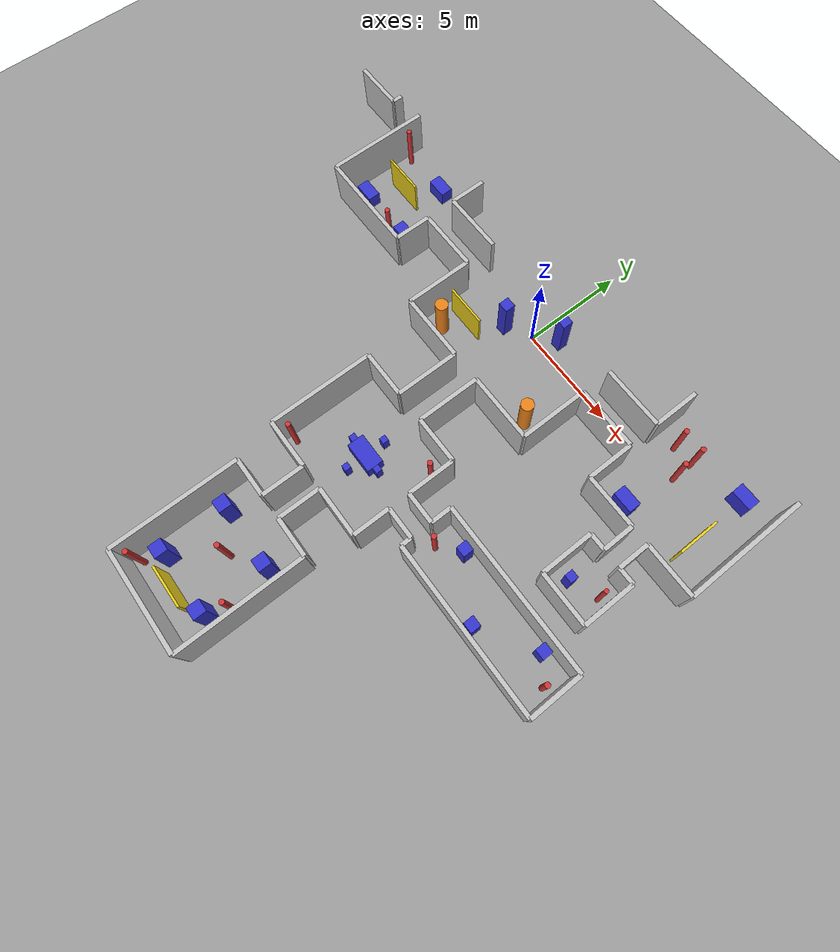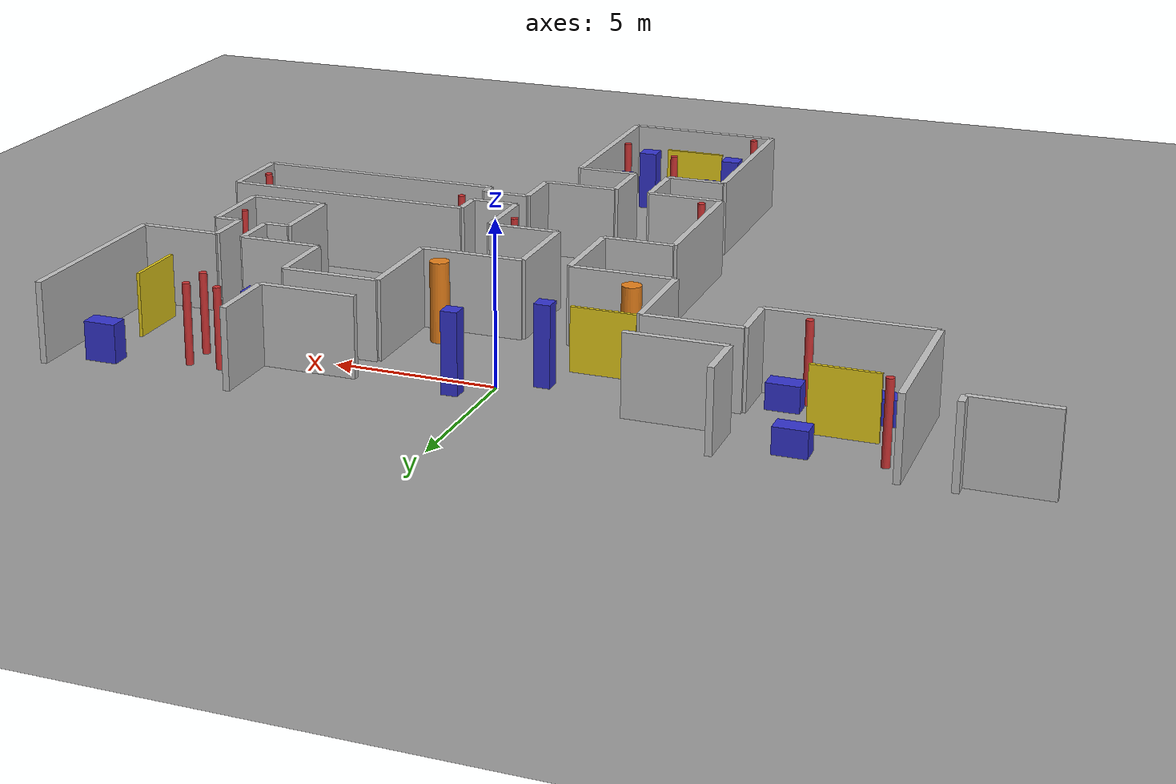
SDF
<sdf version="1.7">
 <world name="commercial_building">
  <model name="ground_plane">
   <static>true</static>
   <link name="link">
    <collision name="collision">
     <geometry><plane><normal>0 0 1</normal><size>50 50</size></plane></geometry>
     <surface><friction><ode><mu>1</mu><mu2>1</mu2></ode></friction></surface>
    </collision>
    <visual name="visual">
     <geometry><plane><normal>0 0 1</normal><size>50 50</size></plane></geometry>
     <material><ambient>0.6 0.6 0.6 1</ambient><diffuse>0.6 0.6 0.6 1</diffuse></material>
    </visual>
   </link>
  </model>
  <model name="wall_hub_s_left">
   <static>true</static>
   <pose>-2.375 -4 1.25 0 0 0</pose>
   <link name="link">
    <collision name="c"><geometry><box><size>3.25 0.2 2.5</size></box></geometry></collision>
    <visual name="v">
     <geometry><box><size>3.25 0.2 2.5</size></box></geometry>
     <material><ambient>0.75 0.75 0.75 1</ambient><diffuse>0.75 0.75 0.75 1</diffuse></material>
    </visual>
   </link>
  </model>
  <model name="wall_hub_s_right">
   <static>true</static>
   <pose>2.375 -4 1.25 0 0 0</pose>
   <link name="link">
    <collision name="c"><geometry><box><size>3.25 0.2 2.5</size></box></geometry></collision>
    <visual name="v">
     <geometry><box><size>3.25 0.2 2.5</size></box></geometry>
     <material><ambient>0.75 0.75 0.75 1</ambient><diffuse>0.75 0.75 0.75 1</diffuse></material>
    </visual>
   </link>
  </model>
  <model name="wall_hub_e_bot">
   <static>true</static>
   <pose>4 -2.375 1.25 0 0 0</pose>
   <link name="link">
    <collision name="c"><geometry><box><size>0.2 3.25 2.5</size></box></geometry></collision>
    <visual name="v">
     <geometry><box><size>0.2 3.25 2.5</size></box></geometry>
     <material><ambient>0.75 0.75 0.75 1</ambient><diffuse>0.75 0.75 0.75 1</diffuse></material>
    </visual>
   </link>
  </model>
  <model name="wall_hub_w_bot">
   <static>true</static>
   <pose>-4 -2.375 1.25 0 0 0</pose>
   <link name="link">
    <collision name="c"><geometry><box><size>0.2 3.25 2.5</size></box></geometry></collision>
    <visual name="v">
     <geometry><box><size>0.2 3.25 2.5</size></box></geometry>
     <material><ambient>0.75 0.75 0.75 1</ambient><diffuse>0.75 0.75 0.75 1</diffuse></material>
    </visual>
   </link>
  </model>
  <model name="wall_shall_west">
   <static>true</static>
   <pose>-0.75 -5.5 1.25 0 0 0</pose>
   <link name="link">
    <collision name="c"><geometry><box><size>0.2 3.0 2.5</size></box></geometry></collision>
    <visual name="v">
     <geometry><box><size>0.2 3.0 2.5</size></box></geometry>
     <material><ambient>0.75 0.75 0.75 1</ambient><diffuse>0.75 0.75 0.75 1</diffuse></material>
    </visual>
   </link>
  </model>
  <model name="wall_shall_east">
   <static>true</static>
   <pose>0.75 -5.5 1.25 0 0 0</pose>
   <link name="link">
    <collision name="c"><geometry><box><size>0.2 3.0 2.5</size></box></geometry></collision>
    <visual name="v">
     <geometry><box><size>0.2 3.0 2.5</size></box></geometry>
     <material><ambient>0.75 0.75 0.75 1</ambient><diffuse>0.75 0.75 0.75 1</diffuse></material>
    </visual>
   </link>
  </model>
  <model name="wall_D_n_left">
   <static>true</static>
   <pose>-1.875 -7 1.25 0 0 0</pose>
   <link name="link">
    <collision name="c"><geometry><box><size>2.25 0.2 2.5</size></box></geometry></collision>
    <visual name="v">
     <geometry><box><size>2.25 0.2 2.5</size></box></geometry>
     <material><ambient>0.75 0.75 0.75 1</ambient><diffuse>0.75 0.75 0.75 1</diffuse></material>
    </visual>
   </link>
  </model>
  <model name="wall_D_n_right">
   <static>true</static>
   <pose>1.875 -7 1.25 0 0 0</pose>
   <link name="link">
    <collision name="c"><geometry><box><size>2.25 0.2 2.5</size></box></geometry></collision>
    <visual name="v">
     <geometry><box><size>2.25 0.2 2.5</size></box></geometry>
     <material><ambient>0.75 0.75 0.75 1</ambient><diffuse>0.75 0.75 0.75 1</diffuse></material>
    </visual>
   </link>
  </model>
  <model name="wall_D_s_left">
   <static>true</static>
   <pose>-1.8 -12 1.25 0 0 0</pose>
   <link name="link">
    <collision name="c"><geometry><box><size>2.4 0.2 2.5</size></box></geometry></collision>
    <visual name="v">
     <geometry><box><size>2.4 0.2 2.5</size></box></geometry>
     <material><ambient>0.75 0.75 0.75 1</ambient><diffuse>0.75 0.75 0.75 1</diffuse></material>
    </visual>
   </link>
  </model>
  <model name="wall_D_s_right">
   <static>true</static>
   <pose>1.8 -12 1.25 0 0 0</pose>
   <link name="link">
    <collision name="c"><geometry><box><size>2.4 0.2 2.5</size></box></geometry></collision>
    <visual name="v">
     <geometry><box><size>2.4 0.2 2.5</size></box></geometry>
     <material><ambient>0.75 0.75 0.75 1</ambient><diffuse>0.75 0.75 0.75 1</diffuse></material>
    </visual>
   </link>
  </model>
  <model name="wall_D_e_top">
   <static>true</static>
   <pose>3 -8.125 1.25 0 0 0</pose>
   <link name="link">
    <collision name="c"><geometry><box><size>0.2 2.25 2.5</size></box></geometry></collision>
    <visual name="v">
     <geometry><box><size>0.2 2.25 2.5</size></box></geometry>
     <material><ambient>0.75 0.75 0.75 1</ambient><diffuse>0.75 0.75 0.75 1</diffuse></material>
    </visual>
   </link>
  </model>
  <model name="wall_D_e_bot">
   <static>true</static>
   <pose>3 -11.125 1.25 0 0 0</pose>
   <link name="link">
    <collision name="c"><geometry><box><size>0.2 1.75 2.5</size></box></geometry></collision>
    <visual name="v">
     <geometry><box><size>0.2 1.75 2.5</size></box></geometry>
     <material><ambient>0.75 0.75 0.75 1</ambient><diffuse>0.75 0.75 0.75 1</diffuse></material>
    </visual>
   </link>
  </model>
  <model name="wall_D_w">
   <static>true</static>
   <pose>-3 -9.5 1.25 0 0 0</pose>
   <link name="link">
    <collision name="c"><geometry><box><size>0.2 5.0 2.5</size></box></geometry></collision>
    <visual name="v">
     <geometry><box><size>0.2 5.0 2.5</size></box></geometry>
     <material><ambient>0.75 0.75 0.75 1</ambient><diffuse>0.75 0.75 0.75 1</diffuse></material>
    </visual>
   </link>
  </model>
  <model name="wall_Ehall_n">
   <static>true</static>
   <pose>3.75 -9.25 1.25 0 0 0</pose>
   <link name="link">
    <collision name="c"><geometry><box><size>1.5 0.2 2.5</size></box></geometry></collision>
    <visual name="v">
     <geometry><box><size>1.5 0.2 2.5</size></box></geometry>
     <material><ambient>0.75 0.75 0.75 1</ambient><diffuse>0.75 0.75 0.75 1</diffuse></material>
    </visual>
   </link>
  </model>
  <model name="wall_Ehall_s">
   <static>true</static>
   <pose>3.75 -10.25 1.25 0 0 0</pose>
   <link name="link">
    <collision name="c"><geometry><box><size>1.5 0.2 2.5</size></box></geometry></collision>
    <visual name="v">
     <geometry><box><size>1.5 0.2 2.5</size></box></geometry>
     <material><ambient>0.75 0.75 0.75 1</ambient><diffuse>0.75 0.75 0.75 1</diffuse></material>
    </visual>
   </link>
  </model>
  <model name="wall_E_w_top">
   <static>true</static>
   <pose>4.5 -8.75 1.25 0 0 0</pose>
   <link name="link">
    <collision name="c"><geometry><box><size>0.2 1.0 2.5</size></box></geometry></collision>
    <visual name="v">
     <geometry><box><size>0.2 1.0 2.5</size></box></geometry>
     <material><ambient>0.75 0.75 0.75 1</ambient><diffuse>0.75 0.75 0.75 1</diffuse></material>
    </visual>
   </link>
  </model>
  <model name="wall_E_w_bot">
   <static>true</static>
   <pose>4.5 -10.5 1.25 0 0 0</pose>
   <link name="link">
    <collision name="c"><geometry><box><size>0.2 0.5 2.5</size></box></geometry></collision>
    <visual name="v">
     <geometry><box><size>0.2 0.5 2.5</size></box></geometry>
     <material><ambient>0.75 0.75 0.75 1</ambient><diffuse>0.75 0.75 0.75 1</diffuse></material>
    </visual>
   </link>
  </model>
  <model name="wall_E_e">
   <static>true</static>
   <pose>12.5 -9.5 1.25 0 0 0</pose>
   <link name="link">
    <collision name="c"><geometry><box><size>0.2 2.5 2.5</size></box></geometry></collision>
    <visual name="v">
     <geometry><box><size>0.2 2.5 2.5</size></box></geometry>
     <material><ambient>0.75 0.75 0.75 1</ambient><diffuse>0.75 0.75 0.75 1</diffuse></material>
    </visual>
   </link>
  </model>
  <model name="wall_E_n">
   <static>true</static>
   <pose>8.5 -8.25 1.25 0 0 0</pose>
   <link name="link">
    <collision name="c"><geometry><box><size>8.0 0.2 2.5</size></box></geometry></collision>
    <visual name="v">
     <geometry><box><size>8.0 0.2 2.5</size></box></geometry>
     <material><ambient>0.75 0.75 0.75 1</ambient><diffuse>0.75 0.75 0.75 1</diffuse></material>
    </visual>
   </link>
  </model>
  <model name="wall_E_s">
   <static>true</static>
   <pose>8.5 -10.75 1.25 0 0 0</pose>
   <link name="link">
    <collision name="c"><geometry><box><size>8.0 0.2 2.5</size></box></geometry></collision>
    <visual name="v">
     <geometry><box><size>8.0 0.2 2.5</size></box></geometry>
     <material><ambient>0.75 0.75 0.75 1</ambient><diffuse>0.75 0.75 0.75 1</diffuse></material>
    </visual>
   </link>
  </model>
  <model name="wall_Fhall_w">
   <static>true</static>
   <pose>-0.6 -13 1.25 0 0 0</pose>
   <link name="link">
    <collision name="c"><geometry><box><size>0.2 2.0 2.5</size></box></geometry></collision>
    <visual name="v">
     <geometry><box><size>0.2 2.0 2.5</size></box></geometry>
     <material><ambient>0.75 0.75 0.75 1</ambient><diffuse>0.75 0.75 0.75 1</diffuse></material>
    </visual>
   </link>
  </model>
  <model name="wall_Fhall_e">
   <static>true</static>
   <pose>0.6 -13 1.25 0 0 0</pose>
   <link name="link">
    <collision name="c"><geometry><box><size>0.2 2.0 2.5</size></box></geometry></collision>
    <visual name="v">
     <geometry><box><size>0.2 2.0 2.5</size></box></geometry>
     <material><ambient>0.75 0.75 0.75 1</ambient><diffuse>0.75 0.75 0.75 1</diffuse></material>
    </visual>
   </link>
  </model>
  <model name="wall_F_n_left">
   <static>true</static>
   <pose>-1.55 -14 1.25 0 0 0</pose>
   <link name="link">
    <collision name="c"><geometry><box><size>1.9 0.2 2.5</size></box></geometry></collision>
    <visual name="v">
     <geometry><box><size>1.9 0.2 2.5</size></box></geometry>
     <material><ambient>0.75 0.75 0.75 1</ambient><diffuse>0.75 0.75 0.75 1</diffuse></material>
    </visual>
   </link>
  </model>
  <model name="wall_F_n_right">
   <static>true</static>
   <pose>1.55 -14 1.25 0 0 0</pose>
   <link name="link">
    <collision name="c"><geometry><box><size>1.9 0.2 2.5</size></box></geometry></collision>
    <visual name="v">
     <geometry><box><size>1.9 0.2 2.5</size></box></geometry>
     <material><ambient>0.75 0.75 0.75 1</ambient><diffuse>0.75 0.75 0.75 1</diffuse></material>
    </visual>
   </link>
  </model>
  <model name="wall_F_s">
   <static>true</static>
   <pose>0 -20 1.25 0 0 0</pose>
   <link name="link">
    <collision name="c"><geometry><box><size>5.0 0.2 2.5</size></box></geometry></collision>
    <visual name="v">
     <geometry><box><size>5.0 0.2 2.5</size></box></geometry>
     <material><ambient>0.75 0.75 0.75 1</ambient><diffuse>0.75 0.75 0.75 1</diffuse></material>
    </visual>
   </link>
  </model>
  <model name="wall_F_e">
   <static>true</static>
   <pose>2.5 -17 1.25 0 0 0</pose>
   <link name="link">
    <collision name="c"><geometry><box><size>0.2 6.0 2.5</size></box></geometry></collision>
    <visual name="v">
     <geometry><box><size>0.2 6.0 2.5</size></box></geometry>
     <material><ambient>0.75 0.75 0.75 1</ambient><diffuse>0.75 0.75 0.75 1</diffuse></material>
    </visual>
   </link>
  </model>
  <model name="wall_F_w">
   <static>true</static>
   <pose>-2.5 -17 1.25 0 0 0</pose>
   <link name="link">
    <collision name="c"><geometry><box><size>0.2 6.0 2.5</size></box></geometry></collision>
    <visual name="v">
     <geometry><box><size>0.2 6.0 2.5</size></box></geometry>
     <material><ambient>0.75 0.75 0.75 1</ambient><diffuse>0.75 0.75 0.75 1</diffuse></material>
    </visual>
   </link>
  </model>
  <model name="wall_ehall_s">
   <static>true</static>
   <pose>5.5 -0.75 1.25 0 0 0</pose>
   <link name="link">
    <collision name="c"><geometry><box><size>3.0 0.2 2.5</size></box></geometry></collision>
    <visual name="v">
     <geometry><box><size>3.0 0.2 2.5</size></box></geometry>
     <material><ambient>0.75 0.75 0.75 1</ambient><diffuse>0.75 0.75 0.75 1</diffuse></material>
    </visual>
   </link>
  </model>
  <model name="wall_ehall_n">
   <static>true</static>
   <pose>5.5 0.75 1.25 0 0 0</pose>
   <link name="link">
    <collision name="c"><geometry><box><size>3.0 0.2 2.5</size></box></geometry></collision>
    <visual name="v">
     <geometry><box><size>3.0 0.2 2.5</size></box></geometry>
     <material><ambient>0.75 0.75 0.75 1</ambient><diffuse>0.75 0.75 0.75 1</diffuse></material>
    </visual>
   </link>
  </model>
  <model name="wall_G_w_bot">
   <static>true</static>
   <pose>7 -1.875 1.25 0 0 0</pose>
   <link name="link">
    <collision name="c"><geometry><box><size>0.2 2.25 2.5</size></box></geometry></collision>
    <visual name="v">
     <geometry><box><size>0.2 2.25 2.5</size></box></geometry>
     <material><ambient>0.75 0.75 0.75 1</ambient><diffuse>0.75 0.75 0.75 1</diffuse></material>
    </visual>
   </link>
  </model>
  <model name="wall_G_w_top">
   <static>true</static>
   <pose>7 1.875 1.25 0 0 0</pose>
   <link name="link">
    <collision name="c"><geometry><box><size>0.2 2.25 2.5</size></box></geometry></collision>
    <visual name="v">
     <geometry><box><size>0.2 2.25 2.5</size></box></geometry>
     <material><ambient>0.75 0.75 0.75 1</ambient><diffuse>0.75 0.75 0.75 1</diffuse></material>
    </visual>
   </link>
  </model>
  <model name="wall_G_e">
   <static>true</static>
   <pose>13 0 1.25 0 0 0</pose>
   <link name="link">
    <collision name="c"><geometry><box><size>0.2 6.0 2.5</size></box></geometry></collision>
    <visual name="v">
     <geometry><box><size>0.2 6.0 2.5</size></box></geometry>
     <material><ambient>0.75 0.75 0.75 1</ambient><diffuse>0.75 0.75 0.75 1</diffuse></material>
    </visual>
   </link>
  </model>
  <model name="wall_G_s_left">
   <static>true</static>
   <pose>8.275 -3 1.25 0 0 0</pose>
   <link name="link">
    <collision name="c"><geometry><box><size>2.55 0.2 2.5</size></box></geometry></collision>
    <visual name="v">
     <geometry><box><size>2.55 0.2 2.5</size></box></geometry>
     <material><ambient>0.75 0.75 0.75 1</ambient><diffuse>0.75 0.75 0.75 1</diffuse></material>
    </visual>
   </link>
  </model>
  <model name="wall_G_s_right">
   <static>true</static>
   <pose>11.725 -3 1.25 0 0 0</pose>
   <link name="link">
    <collision name="c"><geometry><box><size>2.55 0.2 2.5</size></box></geometry></collision>
    <visual name="v">
     <geometry><box><size>2.55 0.2 2.5</size></box></geometry>
     <material><ambient>0.75 0.75 0.75 1</ambient><diffuse>0.75 0.75 0.75 1</diffuse></material>
    </visual>
   </link>
  </model>
  <model name="wall_Hhall_w">
   <static>true</static>
   <pose>9.55 -3.75 1.25 0 0 0</pose>
   <link name="link">
    <collision name="c"><geometry><box><size>0.2 1.5 2.5</size></box></geometry></collision>
    <visual name="v">
     <geometry><box><size>0.2 1.5 2.5</size></box></geometry>
     <material><ambient>0.75 0.75 0.75 1</ambient><diffuse>0.75 0.75 0.75 1</diffuse></material>
    </visual>
   </link>
  </model>
  <model name="wall_Hhall_e">
   <static>true</static>
   <pose>10.45 -3.75 1.25 0 0 0</pose>
   <link name="link">
    <collision name="c"><geometry><box><size>0.2 1.5 2.5</size></box></geometry></collision>
    <visual name="v">
     <geometry><box><size>0.2 1.5 2.5</size></box></geometry>
     <material><ambient>0.75 0.75 0.75 1</ambient><diffuse>0.75 0.75 0.75 1</diffuse></material>
    </visual>
   </link>
  </model>
  <model name="wall_H_n_left">
   <static>true</static>
   <pose>9.15 -4.5 1.25 0 0 0</pose>
   <link name="link">
    <collision name="c"><geometry><box><size>0.8 0.2 2.5</size></box></geometry></collision>
    <visual name="v">
     <geometry><box><size>0.8 0.2 2.5</size></box></geometry>
     <material><ambient>0.75 0.75 0.75 1</ambient><diffuse>0.75 0.75 0.75 1</diffuse></material>
    </visual>
   </link>
  </model>
  <model name="wall_H_n_right">
   <static>true</static>
   <pose>10.85 -4.5 1.25 0 0 0</pose>
   <link name="link">
    <collision name="c"><geometry><box><size>0.8 0.2 2.5</size></box></geometry></collision>
    <visual name="v">
     <geometry><box><size>0.8 0.2 2.5</size></box></geometry>
     <material><ambient>0.75 0.75 0.75 1</ambient><diffuse>0.75 0.75 0.75 1</diffuse></material>
    </visual>
   </link>
  </model>
  <model name="wall_H_s">
   <static>true</static>
   <pose>10 -7 1.25 0 0 0</pose>
   <link name="link">
    <collision name="c"><geometry><box><size>2.5 0.2 2.5</size></box></geometry></collision>
    <visual name="v">
     <geometry><box><size>2.5 0.2 2.5</size></box></geometry>
     <material><ambient>0.75 0.75 0.75 1</ambient><diffuse>0.75 0.75 0.75 1</diffuse></material>
    </visual>
   </link>
  </model>
  <model name="wall_H_e">
   <static>true</static>
   <pose>11.25 -5.75 1.25 0 0 0</pose>
   <link name="link">
    <collision name="c"><geometry><box><size>0.2 2.5 2.5</size></box></geometry></collision>
    <visual name="v">
     <geometry><box><size>0.2 2.5 2.5</size></box></geometry>
     <material><ambient>0.75 0.75 0.75 1</ambient><diffuse>0.75 0.75 0.75 1</diffuse></material>
    </visual>
   </link>
  </model>
  <model name="wall_H_w">
   <static>true</static>
   <pose>8.75 -5.75 1.25 0 0 0</pose>
   <link name="link">
    <collision name="c"><geometry><box><size>0.2 2.5 2.5</size></box></geometry></collision>
    <visual name="v">
     <geometry><box><size>0.2 2.5 2.5</size></box></geometry>
     <material><ambient>0.75 0.75 0.75 1</ambient><diffuse>0.75 0.75 0.75 1</diffuse></material>
    </visual>
   </link>
  </model>
  <model name="wall_whall_s">
   <static>true</static>
   <pose>-5.5 -0.75 1.25 0 0 0</pose>
   <link name="link">
    <collision name="c"><geometry><box><size>3.0 0.2 2.5</size></box></geometry></collision>
    <visual name="v">
     <geometry><box><size>3.0 0.2 2.5</size></box></geometry>
     <material><ambient>0.75 0.75 0.75 1</ambient><diffuse>0.75 0.75 0.75 1</diffuse></material>
    </visual>
   </link>
  </model>
  <model name="wall_whall_n">
   <static>true</static>
   <pose>-5.5 0.75 1.25 0 0 0</pose>
   <link name="link">
    <collision name="c"><geometry><box><size>3.0 0.2 2.5</size></box></geometry></collision>
    <visual name="v">
     <geometry><box><size>3.0 0.2 2.5</size></box></geometry>
     <material><ambient>0.75 0.75 0.75 1</ambient><diffuse>0.75 0.75 0.75 1</diffuse></material>
    </visual>
   </link>
  </model>
  <model name="wall_J_e_bot">
   <static>true</static>
   <pose>-7 -1.625 1.25 0 0 0</pose>
   <link name="link">
    <collision name="c"><geometry><box><size>0.2 1.75 2.5</size></box></geometry></collision>
    <visual name="v">
     <geometry><box><size>0.2 1.75 2.5</size></box></geometry>
     <material><ambient>0.75 0.75 0.75 1</ambient><diffuse>0.75 0.75 0.75 1</diffuse></material>
    </visual>
   </link>
  </model>
  <model name="wall_J_e_top">
   <static>true</static>
   <pose>-7 1.625 1.25 0 0 0</pose>
   <link name="link">
    <collision name="c"><geometry><box><size>0.2 1.75 2.5</size></box></geometry></collision>
    <visual name="v">
     <geometry><box><size>0.2 1.75 2.5</size></box></geometry>
     <material><ambient>0.75 0.75 0.75 1</ambient><diffuse>0.75 0.75 0.75 1</diffuse></material>
    </visual>
   </link>
  </model>
  <model name="wall_J_w">
   <static>true</static>
   <pose>-12 0 1.25 0 0 0</pose>
   <link name="link">
    <collision name="c"><geometry><box><size>0.2 5.0 2.5</size></box></geometry></collision>
    <visual name="v">
     <geometry><box><size>0.2 5.0 2.5</size></box></geometry>
     <material><ambient>0.75 0.75 0.75 1</ambient><diffuse>0.75 0.75 0.75 1</diffuse></material>
    </visual>
   </link>
  </model>
  <model name="wall_J_s">
   <static>true</static>
   <pose>-9.5 -2.5 1.25 0 0 0</pose>
   <link name="link">
    <collision name="c"><geometry><box><size>5.0 0.2 2.5</size></box></geometry></collision>
    <visual name="v">
     <geometry><box><size>5.0 0.2 2.5</size></box></geometry>
     <material><ambient>0.75 0.75 0.75 1</ambient><diffuse>0.75 0.75 0.75 1</diffuse></material>
    </visual>
   </link>
  </model>
  <model name="wall_L_e_bot">
   <static>true</static>
   <pose>-13.5 2.25 1.25 0 0 0</pose>
   <link name="link">
    <collision name="c"><geometry><box><size>0.2 0.5 2.5</size></box></geometry></collision>
    <visual name="v">
     <geometry><box><size>0.2 0.5 2.5</size></box></geometry>
     <material><ambient>0.75 0.75 0.75 1</ambient><diffuse>0.75 0.75 0.75 1</diffuse></material>
    </visual>
   </link>
  </model>
  <model name="wall_L_s">
   <static>true</static>
   <pose>-14.75 2.0 1.25 0 0 0</pose>
   <link name="link">
    <collision name="c"><geometry><box><size>2.5 0.2 2.5</size></box></geometry></collision>
    <visual name="v">
     <geometry><box><size>2.5 0.2 2.5</size></box></geometry>
     <material><ambient>0.75 0.75 0.75 1</ambient><diffuse>0.75 0.75 0.75 1</diffuse></material>
    </visual>
   </link>
  </model>
  <model name="obs_hub_post_sw">
   <static>true</static>
   <pose>-3 -3 1.25 0 0 0</pose>
   <link name="link">
    <collision name="c">
     <geometry><cylinder><radius>0.3</radius><length>2.5</length></cylinder></geometry>
    </collision>
    <visual name="v">
     <geometry><cylinder><radius>0.3</radius><length>2.5</length></cylinder></geometry>
     <material><ambient>0.9 0.5 0.1 1</ambient><diffuse>0.9 0.5 0.1 1</diffuse></material>
    </visual>
   </link>
  </model>
  <model name="obs_hub_post_se">
   <static>true</static>
   <pose>3 -3 1.25 0 0 0</pose>
   <link name="link">
    <collision name="c">
     <geometry><cylinder><radius>0.3</radius><length>2.5</length></cylinder></geometry>
    </collision>
    <visual name="v">
     <geometry><cylinder><radius>0.3</radius><length>2.5</length></cylinder></geometry>
     <material><ambient>0.9 0.5 0.1 1</ambient><diffuse>0.9 0.5 0.1 1</diffuse></material>
    </visual>
   </link>
  </model>
  <model name="obs_hub_box1">
   <static>true</static>
   <pose>1.0 0.8 1.25 0 0 0</pose>
   <link name="link">
    <collision name="c"><geometry><box><size>0.5 0.5 2.5</size></box></geometry></collision>
    <visual name="v">
     <geometry><box><size>0.5 0.5 2.5</size></box></geometry>
     <material><ambient>0.2 0.2 0.8 1</ambient><diffuse>0.2 0.2 0.8 1</diffuse></material>
    </visual>
   </link>
  </model>
  <model name="obs_hub_box2">
   <static>true</static>
   <pose>-1.2 -0.7 1.25 0 0 0</pose>
   <link name="link">
    <collision name="c"><geometry><box><size>0.5 0.5 2.5</size></box></geometry></collision>
    <visual name="v">
     <geometry><box><size>0.5 0.5 2.5</size></box></geometry>
     <material><ambient>0.2 0.2 0.8 1</ambient><diffuse>0.2 0.2 0.8 1</diffuse></material>
    </visual>
   </link>
  </model>
  <model name="obs_hub_partition">
   <static>true</static>
   <pose>-2.5 -2.0 1.0 0 0 0</pose>
   <link name="link">
    <collision name="c"><geometry><box><size>2.0 0.1 2.0</size></box></geometry></collision>
    <visual name="v">
     <geometry><box><size>2.0 0.1 2.0</size></box></geometry>
     <material><ambient>0.9 0.8 0.1 1</ambient><diffuse>0.9 0.8 0.1 1</diffuse></material>
    </visual>
   </link>
  </model>
  <model name="obs_D_table">
   <static>true</static>
   <pose>0 -9.5 0.4 0 0 0</pose>
   <link name="link">
    <collision name="c"><geometry><box><size>1.5 0.8 0.8</size></box></geometry></collision>
    <visual name="v">
     <geometry><box><size>1.5 0.8 0.8</size></box></geometry>
     <material><ambient>0.2 0.2 0.8 1</ambient><diffuse>0.2 0.2 0.8 1</diffuse></material>
    </visual>
   </link>
  </model>
  <model name="obs_D_chair1">
   <static>true</static>
   <pose>-0.9 -9.5 0.4 0 0 0</pose>
   <link name="link">
    <collision name="c"><geometry><box><size>0.3 0.3 0.8</size></box></geometry></collision>
    <visual name="v">
     <geometry><box><size>0.3 0.3 0.8</size></box></geometry>
     <material><ambient>0.2 0.2 0.8 1</ambient><diffuse>0.2 0.2 0.8 1</diffuse></material>
    </visual>
   </link>
  </model>
  <model name="obs_D_chair2">
   <static>true</static>
   <pose>0.9 -9.5 0.4 0 0 0</pose>
   <link name="link">
    <collision name="c"><geometry><box><size>0.3 0.3 0.8</size></box></geometry></collision>
    <visual name="v">
     <geometry><box><size>0.3 0.3 0.8</size></box></geometry>
     <material><ambient>0.2 0.2 0.8 1</ambient><diffuse>0.2 0.2 0.8 1</diffuse></material>
    </visual>
   </link>
  </model>
  <model name="obs_D_chair3">
   <static>true</static>
   <pose>0 -10.5 0.4 0 0 0</pose>
   <link name="link">
    <collision name="c"><geometry><box><size>0.3 0.3 0.8</size></box></geometry></collision>
    <visual name="v">
     <geometry><box><size>0.3 0.3 0.8</size></box></geometry>
     <material><ambient>0.2 0.2 0.8 1</ambient><diffuse>0.2 0.2 0.8 1</diffuse></material>
    </visual>
   </link>
  </model>
  <model name="obs_D_chair4">
   <static>true</static>
   <pose>0 -8.5 0.4 0 0 0</pose>
   <link name="link">
    <collision name="c"><geometry><box><size>0.3 0.3 0.8</size></box></geometry></collision>
    <visual name="v">
     <geometry><box><size>0.3 0.3 0.8</size></box></geometry>
     <material><ambient>0.2 0.2 0.8 1</ambient><diffuse>0.2 0.2 0.8 1</diffuse></material>
    </visual>
   </link>
  </model>
  <model name="obs_D_cyl1">
   <static>true</static>
   <pose>-2.5 -11.5 1.25 0 0 0</pose>
   <link name="link">
    <collision name="c">
     <geometry><cylinder><radius>0.12</radius><length>2.5</length></cylinder></geometry>
    </collision>
    <visual name="v">
     <geometry><cylinder><radius>0.12</radius><length>2.5</length></cylinder></geometry>
     <material><ambient>0.8 0.2 0.2 1</ambient><diffuse>0.8 0.2 0.2 1</diffuse></material>
    </visual>
   </link>
  </model>
  <model name="obs_D_cyl2">
   <static>true</static>
   <pose>2.5 -7.8 1.25 0 0 0</pose>
   <link name="link">
    <collision name="c">
     <geometry><cylinder><radius>0.12</radius><length>2.5</length></cylinder></geometry>
    </collision>
    <visual name="v">
     <geometry><cylinder><radius>0.12</radius><length>2.5</length></cylinder></geometry>
     <material><ambient>0.8 0.2 0.2 1</ambient><diffuse>0.8 0.2 0.2 1</diffuse></material>
    </visual>
   </link>
  </model>
  <model name="obs_E_box1">
   <static>true</static>
   <pose>6.0 -8.7 0.75 0 0 0</pose>
   <link name="link">
    <collision name="c"><geometry><box><size>0.5 0.5 1.5</size></box></geometry></collision>
    <visual name="v">
     <geometry><box><size>0.5 0.5 1.5</size></box></geometry>
     <material><ambient>0.2 0.2 0.8 1</ambient><diffuse>0.2 0.2 0.8 1</diffuse></material>
    </visual>
   </link>
  </model>
  <model name="obs_E_box2">
   <static>true</static>
   <pose>8.5 -10.3 0.75 0 0 0</pose>
   <link name="link">
    <collision name="c"><geometry><box><size>0.5 0.5 1.5</size></box></geometry></collision>
    <visual name="v">
     <geometry><box><size>0.5 0.5 1.5</size></box></geometry>
     <material><ambient>0.2 0.2 0.8 1</ambient><diffuse>0.2 0.2 0.8 1</diffuse></material>
    </visual>
   </link>
  </model>
  <model name="obs_E_box3">
   <static>true</static>
   <pose>11.0 -8.7 0.75 0 0 0</pose>
   <link name="link">
    <collision name="c"><geometry><box><size>0.5 0.5 1.5</size></box></geometry></collision>
    <visual name="v">
     <geometry><box><size>0.5 0.5 1.5</size></box></geometry>
     <material><ambient>0.2 0.2 0.8 1</ambient><diffuse>0.2 0.2 0.8 1</diffuse></material>
    </visual>
   </link>
  </model>
  <model name="obs_E_cyl1">
   <static>true</static>
   <pose>5.0 -9.5 1.25 0 0 0</pose>
   <link name="link">
    <collision name="c">
     <geometry><cylinder><radius>0.12</radius><length>2.5</length></cylinder></geometry>
    </collision>
    <visual name="v">
     <geometry><cylinder><radius>0.12</radius><length>2.5</length></cylinder></geometry>
     <material><ambient>0.8 0.2 0.2 1</ambient><diffuse>0.8 0.2 0.2 1</diffuse></material>
    </visual>
   </link>
  </model>
  <model name="obs_E_cyl2">
   <static>true</static>
   <pose>12.0 -9.5 1.25 0 0 0</pose>
   <link name="link">
    <collision name="c">
     <geometry><cylinder><radius>0.12</radius><length>2.5</length></cylinder></geometry>
    </collision>
    <visual name="v">
     <geometry><cylinder><radius>0.12</radius><length>2.5</length></cylinder></geometry>
     <material><ambient>0.8 0.2 0.2 1</ambient><diffuse>0.8 0.2 0.2 1</diffuse></material>
    </visual>
   </link>
  </model>
  <model name="obs_F_box1">
   <static>true</static>
   <pose>-1.5 -15.5 1.0 0 0 0</pose>
   <link name="link">
    <collision name="c"><geometry><box><size>0.6 0.6 2.0</size></box></geometry></collision>
    <visual name="v">
     <geometry><box><size>0.6 0.6 2.0</size></box></geometry>
     <material><ambient>0.2 0.2 0.8 1</ambient><diffuse>0.2 0.2 0.8 1</diffuse></material>
    </visual>
   </link>
  </model>
  <model name="obs_F_box2">
   <static>true</static>
   <pose>1.5 -15.5 1.0 0 0 0</pose>
   <link name="link">
    <collision name="c"><geometry><box><size>0.6 0.6 2.0</size></box></geometry></collision>
    <visual name="v">
     <geometry><box><size>0.6 0.6 2.0</size></box></geometry>
     <material><ambient>0.2 0.2 0.8 1</ambient><diffuse>0.2 0.2 0.8 1</diffuse></material>
    </visual>
   </link>
  </model>
  <model name="obs_F_box3">
   <static>true</static>
   <pose>-1.5 -18.5 1.0 0 0 0</pose>
   <link name="link">
    <collision name="c"><geometry><box><size>0.6 0.6 2.0</size></box></geometry></collision>
    <visual name="v">
     <geometry><box><size>0.6 0.6 2.0</size></box></geometry>
     <material><ambient>0.2 0.2 0.8 1</ambient><diffuse>0.2 0.2 0.8 1</diffuse></material>
    </visual>
   </link>
  </model>
  <model name="obs_F_box4">
   <static>true</static>
   <pose>1.5 -18.5 1.0 0 0 0</pose>
   <link name="link">
    <collision name="c"><geometry><box><size>0.6 0.6 2.0</size></box></geometry></collision>
    <visual name="v">
     <geometry><box><size>0.6 0.6 2.0</size></box></geometry>
     <material><ambient>0.2 0.2 0.8 1</ambient><diffuse>0.2 0.2 0.8 1</diffuse></material>
    </visual>
   </link>
  </model>
  <model name="obs_F_cyl1">
   <static>true</static>
   <pose>0 -16.5 1.25 0 0 0</pose>
   <link name="link">
    <collision name="c">
     <geometry><cylinder><radius>0.12</radius><length>2.5</length></cylinder></geometry>
    </collision>
    <visual name="v">
     <geometry><cylinder><radius>0.12</radius><length>2.5</length></cylinder></geometry>
     <material><ambient>0.8 0.2 0.2 1</ambient><diffuse>0.8 0.2 0.2 1</diffuse></material>
    </visual>
   </link>
  </model>
  <model name="obs_F_cyl2">
   <static>true</static>
   <pose>-2.0 -19.5 1.25 0 0 0</pose>
   <link name="link">
    <collision name="c">
     <geometry><cylinder><radius>0.12</radius><length>2.5</length></cylinder></geometry>
    </collision>
    <visual name="v">
     <geometry><cylinder><radius>0.12</radius><length>2.5</length></cylinder></geometry>
     <material><ambient>0.8 0.2 0.2 1</ambient><diffuse>0.8 0.2 0.2 1</diffuse></material>
    </visual>
   </link>
  </model>
  <model name="obs_F_cyl3">
   <static>true</static>
   <pose>2.0 -17.5 1.25 0 0 0</pose>
   <link name="link">
    <collision name="c">
     <geometry><cylinder><radius>0.12</radius><length>2.5</length></cylinder></geometry>
    </collision>
    <visual name="v">
     <geometry><cylinder><radius>0.12</radius><length>2.5</length></cylinder></geometry>
     <material><ambient>0.8 0.2 0.2 1</ambient><diffuse>0.8 0.2 0.2 1</diffuse></material>
    </visual>
   </link>
  </model>
  <model name="obs_F_part">
   <static>true</static>
   <pose>0 -19.0 1.0 0 0 0</pose>
   <link name="link">
    <collision name="c"><geometry><box><size>2.0 0.1 2.0</size></box></geometry></collision>
    <visual name="v">
     <geometry><box><size>2.0 0.1 2.0</size></box></geometry>
     <material><ambient>0.9 0.8 0.1 1</ambient><diffuse>0.9 0.8 0.1 1</diffuse></material>
    </visual>
   </link>
  </model>
  <model name="obs_G_box1">
   <static>true</static>
   <pose>8.5 -2.0 0.6 0 0 0</pose>
   <link name="link">
    <collision name="c"><geometry><box><size>1.0 0.6 1.2</size></box></geometry></collision>
    <visual name="v">
     <geometry><box><size>1.0 0.6 1.2</size></box></geometry>
     <material><ambient>0.2 0.2 0.8 1</ambient><diffuse>0.2 0.2 0.8 1</diffuse></material>
    </visual>
   </link>
  </model>
  <model name="obs_G_box2">
   <static>true</static>
   <pose>11.5 2.0 0.6 0 0 0</pose>
   <link name="link">
    <collision name="c"><geometry><box><size>1.0 0.6 1.2</size></box></geometry></collision>
    <visual name="v">
     <geometry><box><size>1.0 0.6 1.2</size></box></geometry>
     <material><ambient>0.2 0.2 0.8 1</ambient><diffuse>0.2 0.2 0.8 1</diffuse></material>
    </visual>
   </link>
  </model>
  <model name="obs_G_cyl1">
   <static>true</static>
   <pose>8.0 1.5 1.25 0 0 0</pose>
   <link name="link">
    <collision name="c">
     <geometry><cylinder><radius>0.12</radius><length>2.5</length></cylinder></geometry>
    </collision>
    <visual name="v">
     <geometry><cylinder><radius>0.12</radius><length>2.5</length></cylinder></geometry>
     <material><ambient>0.8 0.2 0.2 1</ambient><diffuse>0.8 0.2 0.2 1</diffuse></material>
    </visual>
   </link>
  </model>
  <model name="obs_G_cyl2">
   <static>true</static>
   <pose>9.0 1.5 1.25 0 0 0</pose>
   <link name="link">
    <collision name="c">
     <geometry><cylinder><radius>0.12</radius><length>2.5</length></cylinder></geometry>
    </collision>
    <visual name="v">
     <geometry><cylinder><radius>0.12</radius><length>2.5</length></cylinder></geometry>
     <material><ambient>0.8 0.2 0.2 1</ambient><diffuse>0.8 0.2 0.2 1</diffuse></material>
    </visual>
   </link>
  </model>
  <model name="obs_G_cyl3">
   <static>true</static>
   <pose>9.0 0.5 1.25 0 0 0</pose>
   <link name="link">
    <collision name="c">
     <geometry><cylinder><radius>0.12</radius><length>2.5</length></cylinder></geometry>
    </collision>
    <visual name="v">
     <geometry><cylinder><radius>0.12</radius><length>2.5</length></cylinder></geometry>
     <material><ambient>0.8 0.2 0.2 1</ambient><diffuse>0.8 0.2 0.2 1</diffuse></material>
    </visual>
   </link>
  </model>
  <model name="obs_G_part">
   <static>true</static>
   <pose>11.5 -1.0 1.0 0 0 1.5708</pose>
   <link name="link">
    <collision name="c"><geometry><box><size>2.0 0.1 2.0</size></box></geometry></collision>
    <visual name="v">
     <geometry><box><size>2.0 0.1 2.0</size></box></geometry>
     <material><ambient>0.9 0.8 0.1 1</ambient><diffuse>0.9 0.8 0.1 1</diffuse></material>
    </visual>
   </link>
  </model>
  <model name="obs_H_box1">
   <static>true</static>
   <pose>9.5 -6.0 0.75 0 0 0</pose>
   <link name="link">
    <collision name="c"><geometry><box><size>0.4 0.4 1.5</size></box></geometry></collision>
    <visual name="v">
     <geometry><box><size>0.4 0.4 1.5</size></box></geometry>
     <material><ambient>0.2 0.2 0.8 1</ambient><diffuse>0.2 0.2 0.8 1</diffuse></material>
    </visual>
   </link>
  </model>
  <model name="obs_H_cyl1">
   <static>true</static>
   <pose>10.8 -5.5 1.25 0 0 0</pose>
   <link name="link">
    <collision name="c">
     <geometry><cylinder><radius>0.1</radius><length>2.5</length></cylinder></geometry>
    </collision>
    <visual name="v">
     <geometry><cylinder><radius>0.1</radius><length>2.5</length></cylinder></geometry>
     <material><ambient>0.8 0.2 0.2 1</ambient><diffuse>0.8 0.2 0.2 1</diffuse></material>
    </visual>
   </link>
  </model>
  <model name="obs_J_box1">
   <static>true</static>
   <pose>-11.0 -1.5 0.4 0 0 0</pose>
   <link name="link">
    <collision name="c"><geometry><box><size>1.0 0.6 0.8</size></box></geometry></collision>
    <visual name="v">
     <geometry><box><size>1.0 0.6 0.8</size></box></geometry>
     <material><ambient>0.2 0.2 0.8 1</ambient><diffuse>0.2 0.2 0.8 1</diffuse></material>
    </visual>
   </link>
  </model>
  <model name="obs_J_box2">
   <static>true</static>
   <pose>-9.0 1.5 0.4 0 0 0</pose>
   <link name="link">
    <collision name="c"><geometry><box><size>1.0 0.6 0.8</size></box></geometry></collision>
    <visual name="v">
     <geometry><box><size>1.0 0.6 0.8</size></box></geometry>
     <material><ambient>0.2 0.2 0.8 1</ambient><diffuse>0.2 0.2 0.8 1</diffuse></material>
    </visual>
   </link>
  </model>
  <model name="obs_J_box3">
   <static>true</static>
   <pose>-8.0 -1.5 0.4 0 0 0</pose>
   <link name="link">
    <collision name="c"><geometry><box><size>1.0 0.6 0.8</size></box></geometry></collision>
    <visual name="v">
     <geometry><box><size>1.0 0.6 0.8</size></box></geometry>
     <material><ambient>0.2 0.2 0.8 1</ambient><diffuse>0.2 0.2 0.8 1</diffuse></material>
    </visual>
   </link>
  </model>
  <model name="obs_J_cyl1">
   <static>true</static>
   <pose>-11.5 1.5 1.25 0 0 0</pose>
   <link name="link">
    <collision name="c">
     <geometry><cylinder><radius>0.12</radius><length>2.5</length></cylinder></geometry>
    </collision>
    <visual name="v">
     <geometry><cylinder><radius>0.12</radius><length>2.5</length></cylinder></geometry>
     <material><ambient>0.8 0.2 0.2 1</ambient><diffuse>0.8 0.2 0.2 1</diffuse></material>
    </visual>
   </link>
  </model>
  <model name="obs_J_cyl2">
   <static>true</static>
   <pose>-8.5 -2.0 1.25 0 0 0</pose>
   <link name="link">
    <collision name="c">
     <geometry><cylinder><radius>0.12</radius><length>2.5</length></cylinder></geometry>
    </collision>
    <visual name="v">
     <geometry><cylinder><radius>0.12</radius><length>2.5</length></cylinder></geometry>
     <material><ambient>0.8 0.2 0.2 1</ambient><diffuse>0.8 0.2 0.2 1</diffuse></material>
    </visual>
   </link>
  </model>
  <model name="obs_J_part">
   <static>true</static>
   <pose>-10.0 0 1.0 0 0 0</pose>
   <link name="link">
    <collision name="c"><geometry><box><size>2.0 0.1 2.0</size></box></geometry></collision>
    <visual name="v">
     <geometry><box><size>2.0 0.1 2.0</size></box></geometry>
     <material><ambient>0.9 0.8 0.1 1</ambient><diffuse>0.9 0.8 0.1 1</diffuse></material>
    </visual>
   </link>
  </model>
 </world>
</sdf>
